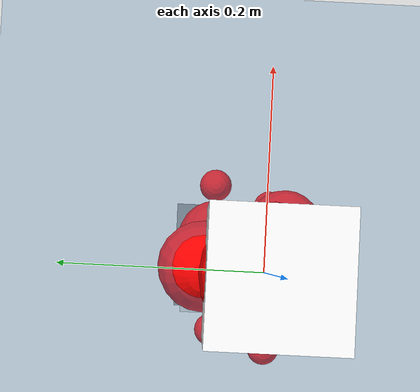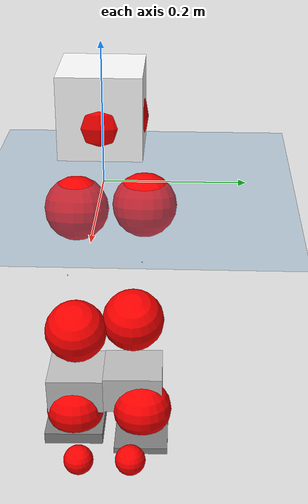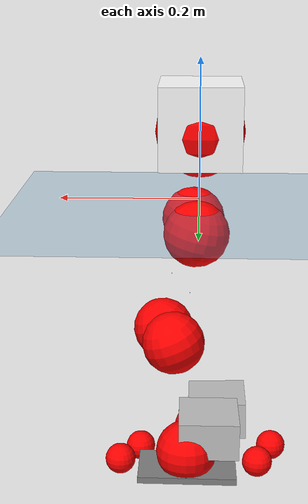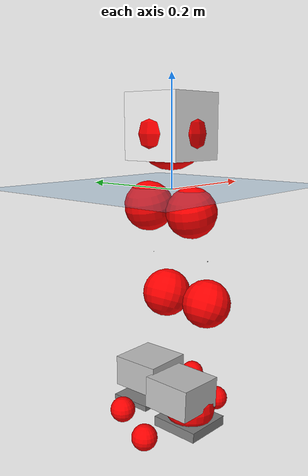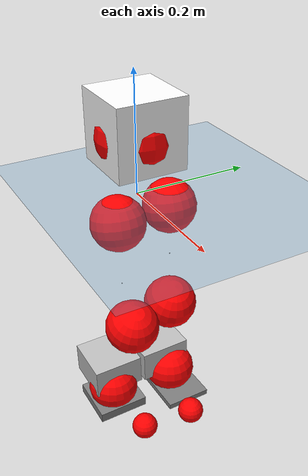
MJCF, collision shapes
<mujoco model="pi_12dof_release_v1">
  <compiler angle="radian" assetdir="assets" balanceinertia="true" inertiafromgeom="false"/>

  <option timestep="0.005" density="1.2" viscosity="2e-05"/>

  <size nkey="1"/>

  <visual>
    <quality shadowsize="8192"/>
    <map shadowclip="0.5"/>
  </visual>

  <default>
    <default class="/">
      <joint armature="0.01" damping="0.01" frictionloss="0.01"/>
      <geom contype="0" conaffinity="0" group="1" solref="-1000 -80"/>
      <site size="0.01 0.005 0.005" group="5"/>
      <general forcelimited="true" biastype="affine" gainprm="20" biasprm="0 -20 -0.5"/>
      <default class="foot">
        <geom size="0.0845 0.036 0.005" type="box" condim="6" group="4" priority="1" friction="0.9 0.2 0.2" solimp="0.015 1 0.005"/>
      </default>
      <default class="reward_collision_sphere">
        <geom group="5" rgba="1 0 0 1"/>
      </default>
    </default>
  </default>

  <asset>
    <texture type="skybox" colorspace="auto" name="//unnamed_texture_0" builtin="gradient" rgb1="0.95 0.95 0.95" rgb2="0.95 0.95 0.95" width="100" height="600"/>
    <texture type="2d" colorspace="auto" name="texplane" builtin="checker" rgb1="0.345 0.575 0.748" rgb2="0.345 0.575 0.748" markrgb="1 1 1" width="512" height="512"/>
    <material name="MatPlane" class="/" texture="texplane" texuniform="true" texrepeat="2 2" specular="0.9"/>
    <mesh name="baselink_1" class="/" file="baselink_1.STL"/>
    <mesh name="r_hip_pitch_link" class="/" file="r_hip_pitch_link.STL"/>
    <mesh name="r_hip_roll_link" class="/" file="r_hip_roll_link.STL"/>
    <mesh name="r_thigh_link" class="/" file="r_thigh_link.STL"/>
    <mesh name="r_calf_link" class="/" file="r_calf_link.STL"/>
    <mesh name="r_ankle_pitch_link" class="/" file="r_ankle_pitch_link.STL"/>
    <mesh name="r_ankle_roll_link" class="/" file="r_ankle_roll_link.STL"/>
    <mesh name="l_hip_pitch_link" class="/" file="l_hip_pitch_link.STL"/>
    <mesh name="l_hip_roll_link" class="/" file="l_hip_roll_link.STL"/>
    <mesh name="l_thigh_link" class="/" file="l_thigh_link.STL"/>
    <mesh name="l_calf_link" class="/" file="l_calf_link.STL"/>
    <mesh name="l_ankle_pitch_link" class="/" file="l_ankle_pitch_link.STL"/>
    <mesh name="l_ankle_roll_link" class="/" file="l_ankle_roll_link.STL"/>
  </asset>

  <worldbody>
    <geom name="floor" class="/" size="100 100 0.125" type="plane" group="0" material="MatPlane"/>
    <light name="toplight_shadow" class="/" pos="0 0 5" dir="0.0990148 0.0990148 -0.990148" type="directional" ambient="0.04 0.04 0.04" diffuse="0.55 0.55 0.55" specular="0.12 0.12 0.12"/>
    <light name="toplight_fill" class="/" pos="0 0 5" dir="0.0990148 0.0990148 -0.990148" type="directional" castshadow="false" ambient="0.04 0.04 0.04" diffuse="0.3 0.3 0.3" specular="0.08 0.08 0.08"/>
    <body name="trunk" pos="-0.000963197 0.000335521 0.0129636" quat="0.999999 -0.000713337 0.00103236 0.000829358">
      <inertial pos="-0.000149379 -0.0168533 0.0345968" quat="0.695513 0.00980957 0.0109893 0.718362" mass="3.42526" diaginertia="0.0802006 0.00160394 0.0123929"/>
      <joint name="//unnamed_joint_0" type="free"/>
      <geom name="//unnamed_geom_1" class="/" type="mesh" density="0" rgba="1 1 1 1" mesh="baselink_1"/>
      <geom name="//unnamed_geom_2" class="/" size="0.0576057 0.0576057 0.0576057" pos="0 0 0.0964029" type="box" rgba="1 1 1 1"/>
      <geom name="//unnamed_geom_3" class="reward_collision_sphere" size="0.0633663" pos="0 0 0.0843526"/>
      <site name="imu" class="/" pos="-0.04194 0.054678 -0.0438192" size="0.0115211"/>
      <camera name="track" class="/" pos="0 -1.39781 0" quat="0.707107 0.707107 0 0" mode="trackcom"/>
      <camera name="ego_camera" class="/" pos="0.11643 0 0.216907" quat="-0.5 -0.5 0.5 0.5"/>
      <body name="r_hip_pitch_link" pos="0.00327132 -0.00442054 -0.0440092" quat="0.992462 -0.00157973 -0.122518 0.00239516">
        <inertial pos="0.0165718 -0.035532 0.0103086" quat="-0.0151715 0.71508 -0.00494586 0.698861" mass="0.675782" diaginertia="0.00107363 2.03135e-05 0.000198874"/>
        <joint name="r_hip_pitch_joint" class="/" pos="0 0 0" axis="0.0338949 -0.996519 -0.0761653" range="-1.63013 1.50002" armature="0.0178924" damping="0.0617564" frictionloss="0.0193126"/>
        <geom name="//unnamed_geom_4" class="/" type="mesh" density="0" rgba="0.75294 0.75294 0.75294 1" mesh="r_hip_pitch_link"/>
        <geom name="//unnamed_geom_5" class="/" size="0.000576057 0.000576057 0.000576057" type="box" rgba="0.75294 0.75294 0.75294 1"/>
        <body name="r_hip_roll_link" pos="0.00353283 -0.0347446 -0.00955016" quat="1 5.38344e-05 8.07897e-05 0.000258468">
          <inertial pos="0.000432102 0.00205705 -0.062491" quat="0.701561 -0.0736522 -0.0971866 0.702099" mass="0.647695" diaginertia="0.00285817 4.57775e-05 0.000475452"/>
          <joint name="r_hip_roll_joint" class="/" pos="0 0 0" axis="-0.997708 -0.0128359 -0.0664434" stiffness="0.0462744" range="-0.0940341 0.580212" armature="0.0147272" damping="0.0941374" frictionloss="0.00508868"/>
          <geom name="//unnamed_geom_6" class="/" type="mesh" density="0" rgba="0.75294 0.75294 0.75294 1" mesh="r_hip_roll_link"/>
          <geom name="//unnamed_geom_7" class="/" size="0.000576057 0.000576057 0.000576057" type="box" rgba="0.75294 0.75294 0.75294 1"/>
          <geom name="//unnamed_geom_8" class="reward_collision_sphere" size="0.0460846"/>
          <body name="r_thigh_link" pos="0.00916531 -0.0127797 -0.0971221" quat="0.999967 0.00546709 0.00349587 -0.00490436">
            <inertial pos="0.00392601 0.00222926 -0.0560486" quat="0.738615 0.674113 0.00410713 -0.00183762" mass="0.22298" diaginertia="0.00109047 1.61388e-05 0.000163441"/>
            <joint name="r_thigh_joint" class="/" pos="0 0 0" axis="0.00260239 0.000244639 -0.999997" stiffness="0.00195688" range="-0.32329 0.849756" armature="0.00316899" damping="0.00174623" frictionloss="0.0101523"/>
            <geom name="//unnamed_geom_9" class="/" type="mesh" density="0" rgba="0.75294 0.75294 0.75294 1" mesh="r_thigh_link"/>
            <geom name="//unnamed_geom_10" class="/" size="0.000576057 0.000576057 0.000576057" type="box" rgba="0.75294 0.75294 0.75294 1"/>
            <body name="r_calf_link" pos="-0.00821711 0.00950992 -0.0866331" quat="0.945566 0.00239674 0.325415 0.00216696">
              <inertial pos="0.00134334 -0.00613345 -0.0782953" quat="0.999977 0.00453986 -0.00388062 0.00320526" mass="1.34374" diaginertia="0.0398593 0.000788117 0.000425558"/>
              <joint name="r_calf_joint" class="/" pos="0 0 0" axis="0.0365769 -0.995878 0.0830024" range="-1.45955 0.628592" armature="0.0118544" damping="0.0200433" frictionloss="0.0158645"/>
              <geom name="//unnamed_geom_11" class="/" type="mesh" density="0" rgba="0.75294 0.75294 0.75294 1" mesh="r_calf_link"/>
              <geom name="//unnamed_geom_12" class="/" size="0.000576057 0.000576057 0.000576057" type="box" rgba="0.75294 0.75294 0.75294 1"/>
              <geom name="//unnamed_geom_13" class="reward_collision_sphere" size="0.0460846"/>
              <body name="r_ankle_pitch_link" pos="-0.0175992 -0.0110897 -0.167164" quat="0.980264 0.00316985 -0.197661 -0.0018455">
                <inertial pos="0.00453879 0.00761079 0.000390929" quat="0.00118884 0.707821 0.00565491 0.706369" mass="0.235599" diaginertia="0.00258906 3.21058e-05 0.000217981"/>
                <joint name="r_ankle_pitch_joint" class="/" pos="0 0 0" axis="-0.0277187 -0.99873 -0.0420719" stiffness="0.0470216" range="-1.05631 0.31023" armature="0.0105074" damping="0" frictionloss="0.00293733"/>
                <geom name="//unnamed_geom_14" class="/" type="mesh" density="0" rgba="0.75294 0.75294 0.75294 1" mesh="r_ankle_pitch_link"/>
                <geom name="//unnamed_geom_15" class="/" size="0.0449325 0.0460846 0.0288029" type="box" rgba="0.75294 0.75294 0.75294 1"/>
                <body name="r_ankle_roll_link" pos="0.100253 -0.00446934 -0.0105393" quat="0.999995 8.65913e-05 -0.00303256 -0.000136217">
                  <inertial pos="-0.0280668 0.00685702 -0.0348529" quat="0.554774 0.428738 0.407162 0.585345" mass="0.958303" diaginertia="0.0085809 0.000174727 0.000730812"/>
                  <joint name="r_ankle_roll_joint" class="/" pos="0 0 0" axis="-0.999934 -0.00526711 -0.0101991" range="-0.250081 0.26789" armature="0.0117932" damping="0" frictionloss="0.00124319"/>
                  <geom name="//unnamed_geom_16" class="/" type="mesh" density="0" rgba="0.75294 0.75294 0.75294 1" mesh="r_ankle_roll_link"/>
                  <geom name="//unnamed_geom_17" class="/" type="mesh" rgba="0.75294 0.75294 0.75294 1" mesh="r_ankle_roll_link"/>
                  <geom name="right_foot" class="foot" size="0.0451603 0.0459631 0.00911141" pos="-0.0791723 0 -0.0530216"/>
                  <geom name="//unnamed_geom_19" class="reward_collision_sphere" size="0.0460846" pos="-0.07762 0 -0.0241007"/>
                  <geom name="//unnamed_geom_20" class="reward_collision_sphere" size="0.0230423" pos="0.023286 0.0139781 -0.0482015"/>
                  <geom name="//unnamed_geom_21" class="reward_collision_sphere" size="0.0230423" pos="-0.186288 0.0139781 -0.0482015"/>
                  <site name="right_foot" class="foot" pos="-0.0791723 0 -0.0530216" size="0.0115211"/>
                </body>
              </body>
            </body>
          </body>
        </body>
      </body>
      <body name="l_hip_pitch_link" pos="0.00649998 0.00308656 -0.04395" quat="0.992426 -0.00144681 -0.122834 0.000493591">
        <inertial pos="0.0116255 0.0529014 -0.00607039" quat="-0.00479657 0.64649 -0.00251259 0.762903" mass="0.73702" diaginertia="0.00104224 1.49234e-05 0.00028825"/>
        <joint name="l_hip_pitch_joint" class="/" pos="0 0 0" axis="0.00746465 0.999969 -0.00246625" stiffness="0.00562831" range="-1.5272 2.07332" armature="0.00426509" damping="0" frictionloss="0.0199751"/>
        <geom name="//unnamed_geom_22" class="/" type="mesh" density="0" rgba="0.75294 0.75294 0.75294 1" mesh="l_hip_pitch_link"/>
        <geom name="//unnamed_geom_23" class="/" size="0.000576057 0.000576057 0.000576057" type="box" rgba="0.75294 0.75294 0.75294 1"/>
        <body name="l_hip_roll_link" pos="-0.00302231 0.0547559 -0.00283977" quat="0.999986 0.00446134 -0.00276536 -0.00106127">
          <inertial pos="0.00509275 0.0129977 -0.0743373" quat="0.73044 -0.0704016 -0.0776784 0.674883" mass="0.556921" diaginertia="0.00256498 4.1871e-05 0.000226463"/>
          <joint name="l_hip_roll_joint" class="/" pos="0 0 0" axis="-0.998801 -0.0421968 -0.0248317" stiffness="0.0375408" range="-0.86249 0.444254" armature="0.00679138" damping="0.00786633" frictionloss="0.00892733"/>
          <geom name="//unnamed_geom_24" class="/" type="mesh" density="0" rgba="0.75294 0.75294 0.75294 1" mesh="l_hip_roll_link"/>
          <geom name="//unnamed_geom_25" class="/" size="0.000576057 0.000576057 0.000576057" type="box" rgba="0.75294 0.75294 0.75294 1"/>
          <geom name="//unnamed_geom_26" class="reward_collision_sphere" size="0.0460846"/>
          <body name="l_thigh_link" pos="-0.0135604 -0.00413872 -0.0875902" quat="0.999974 0.00690393 -0.00225022 5.62934e-05">
            <inertial pos="-0.0138366 0.00744891 -0.0447628" quat="0.675153 0.737671 0.000908733 -0.00295765" mass="0.15749" diaginertia="0.000947765 9.66269e-06 8.62927e-05"/>
            <joint name="l_thigh_joint" class="/" pos="0 0 0" axis="-0.029147 -0.0207629 -0.999359" range="-0.749054 0.59305" armature="0.0175244" damping="0" frictionloss="0.0190132"/>
            <geom name="//unnamed_geom_27" class="/" type="mesh" density="0" rgba="0.75294 0.75294 0.75294 1" mesh="l_thigh_link"/>
            <geom name="//unnamed_geom_28" class="/" size="0.000576057 0.000576057 0.000576057" type="box" rgba="0.75294 0.75294 0.75294 1"/>
            <body name="l_calf_link" pos="0.00170739 -0.0140001 -0.0867612" quat="0.948276 -0.0034782 0.317361 0.0064673">
              <inertial pos="-0.0061253 -0.00755633 -0.0743392" quat="0.996014 0.0459547 -0.058556 -0.0491437" mass="1.56602" diaginertia="0.0311903 0.000759247 0.00051516"/>
              <joint name="l_calf_joint" class="/" pos="0 0 0" axis="-0.00817783 0.999935 0.0079564" range="-0.784559 1.85502" armature="0.0131422" damping="0" frictionloss="0.0184507"/>
              <geom name="//unnamed_geom_29" class="/" type="mesh" density="0" rgba="0.75294 0.75294 0.75294 1" mesh="l_calf_link"/>
              <geom name="//unnamed_geom_30" class="/" size="0.000576057 0.000576057 0.000576057" type="box" rgba="0.75294 0.75294 0.75294 1"/>
              <geom name="//unnamed_geom_31" class="reward_collision_sphere" size="0.0460846"/>
              <body name="l_ankle_pitch_link" pos="0.00516225 -0.00459551 -0.151855" quat="0.980207 -0.00216467 -0.197962 -0.000779743">
                <inertial pos="0.00891109 -0.0189423 -0.0111744" quat="0.017759 0.665485 -0.0337605 0.745436" mass="0.335564" diaginertia="0.00356585 4.69974e-05 0.00039493"/>
                <joint name="l_ankle_pitch_joint" class="/" pos="0 0 0" axis="0.0818616 0.996585 0.0108141" stiffness="0.0072226" range="-0.493587 1.2694" armature="0.009969" damping="0.0715478" frictionloss="0.0154003"/>
                <geom name="//unnamed_geom_32" class="/" type="mesh" density="0" rgba="0.75294 0.75294 0.75294 1" mesh="l_ankle_pitch_link"/>
                <geom name="//unnamed_geom_33" class="/" size="0.0449325 0.0460846 0.0288029" type="box" rgba="0.75294 0.75294 0.75294 1"/>
                <body name="l_ankle_roll_link" pos="0.110366 0.0139177 -0.00566857" quat="0.999978 -0.0038008 -0.00215242 -0.00499656">
                  <inertial pos="-0.0473106 0.00239935 -0.0160694" quat="0.540942 0.490219 0.376848 0.570134" mass="1.07462" diaginertia="0.0106512 0.000213316 0.000626047"/>
                  <joint name="l_ankle_roll_joint" class="/" pos="0 0 0" axis="-0.99583 0.0842391 -0.0350328" stiffness="0.0423446" range="-0.138006 0.526157" armature="0.0115948" damping="0" frictionloss="0.0219711"/>
                  <geom name="//unnamed_geom_34" class="/" type="mesh" density="0" rgba="0.75294 0.75294 0.75294 1" mesh="l_ankle_roll_link"/>
                  <geom name="//unnamed_geom_35" class="/" type="mesh" rgba="0.75294 0.75294 0.75294 1" mesh="l_ankle_roll_link"/>
                  <geom name="left_foot" class="foot" size="0.0737384 0.0405844 0.005016" pos="-0.0791723 0 -0.0530216"/>
                  <geom name="//unnamed_geom_37" class="reward_collision_sphere" size="0.0460846" pos="-0.07762 0 -0.0241007"/>
                  <geom name="//unnamed_geom_38" class="reward_collision_sphere" size="0.0230423" pos="0.023286 -0.0139781 -0.0482015"/>
                  <geom name="//unnamed_geom_39" class="reward_collision_sphere" size="0.0230423" pos="-0.186288 -0.0139781 -0.0482015"/>
                  <site name="left_foot" class="foot" pos="-0.0791723 0 -0.0530216" size="0.0115211"/>
                </body>
              </body>
            </body>
          </body>
        </body>
      </body>
    </body>
  </worldbody>

  <contact>
    <pair class="/" geom1="floor" geom2="right_foot" name="//unnamed_contact_1"/>
    <pair class="/" geom1="floor" geom2="left_foot" name="//unnamed_contact_0"/>
  </contact>

  <actuator>
    <general name="r_hip_pitch_joint" class="/" joint="r_hip_pitch_joint" forcerange="-36.0339 36.0339" gainprm="28.3814" biasprm="0 -28.3814 -0.492953"/>
    <general name="r_hip_roll_joint" class="/" joint="r_hip_roll_joint" forcerange="-23.4509 23.4509" gainprm="28.3814" biasprm="0 -28.3814 -0.492953"/>
    <general name="r_thigh_joint" class="/" joint="r_thigh_joint" forcerange="-34.8792 34.8792" gainprm="28.3814" biasprm="0 -28.3814 -0.492953"/>
    <general name="r_calf_joint" class="/" joint="r_calf_joint" forcerange="-16.6334 16.6334" gainprm="28.3814" biasprm="0 -28.3814 -0.492953"/>
    <general name="r_ankle_pitch_joint" class="/" joint="r_ankle_pitch_joint" forcerange="-13.2294 13.2294" gainprm="28.3814" biasprm="0 -28.3814 -0.492953"/>
    <general name="r_ankle_roll_joint" class="/" joint="r_ankle_roll_joint" forcerange="-9.7013 9.7013" gainprm="28.3814" biasprm="0 -28.3814 -0.492953"/>
    <general name="l_hip_pitch_joint" class="/" joint="l_hip_pitch_joint" forcerange="-34.2385 34.2385" gainprm="28.3814" biasprm="0 -28.3814 -0.492953"/>
    <general name="l_hip_roll_joint" class="/" joint="l_hip_roll_joint" forcerange="-40.5616 40.5616" gainprm="28.3814" biasprm="0 -28.3814 -0.492953"/>
    <general name="l_thigh_joint" class="/" joint="l_thigh_joint" forcerange="-17.7477 17.7477" gainprm="28.3814" biasprm="0 -28.3814 -0.492953"/>
    <general name="l_calf_joint" class="/" joint="l_calf_joint" forcerange="-31.2551 31.2551" gainprm="28.3814" biasprm="0 -28.3814 -0.492953"/>
    <general name="l_ankle_pitch_joint" class="/" joint="l_ankle_pitch_joint" forcerange="-16.5152 16.5152" gainprm="28.3814" biasprm="0 -28.3814 -0.492953"/>
    <general name="l_ankle_roll_joint" class="/" joint="l_ankle_roll_joint" forcerange="-33.1705 33.1705" gainprm="28.3814" biasprm="0 -28.3814 -0.492953"/>
  </actuator>

  <sensor>
    <gyro site="imu" name="imu_angular_velocity"/>
    <velocimeter site="imu" name="imu_linear_velocity"/>
    <framelinvel objtype="site" objname="left_foot" name="left_foot_global_linear_velocity"/>
    <framelinvel objtype="site" objname="right_foot" name="right_foot_global_linear_velocity"/>
  </sensor>

  <keyframe>
    <key name="home" qpos="0 0 0.291 1 0 0 0 0.4 0 0 -0.8 0.4 0 -0.4 0 0 0.8 -0.4 0"/>
  </keyframe>
</mujoco>
